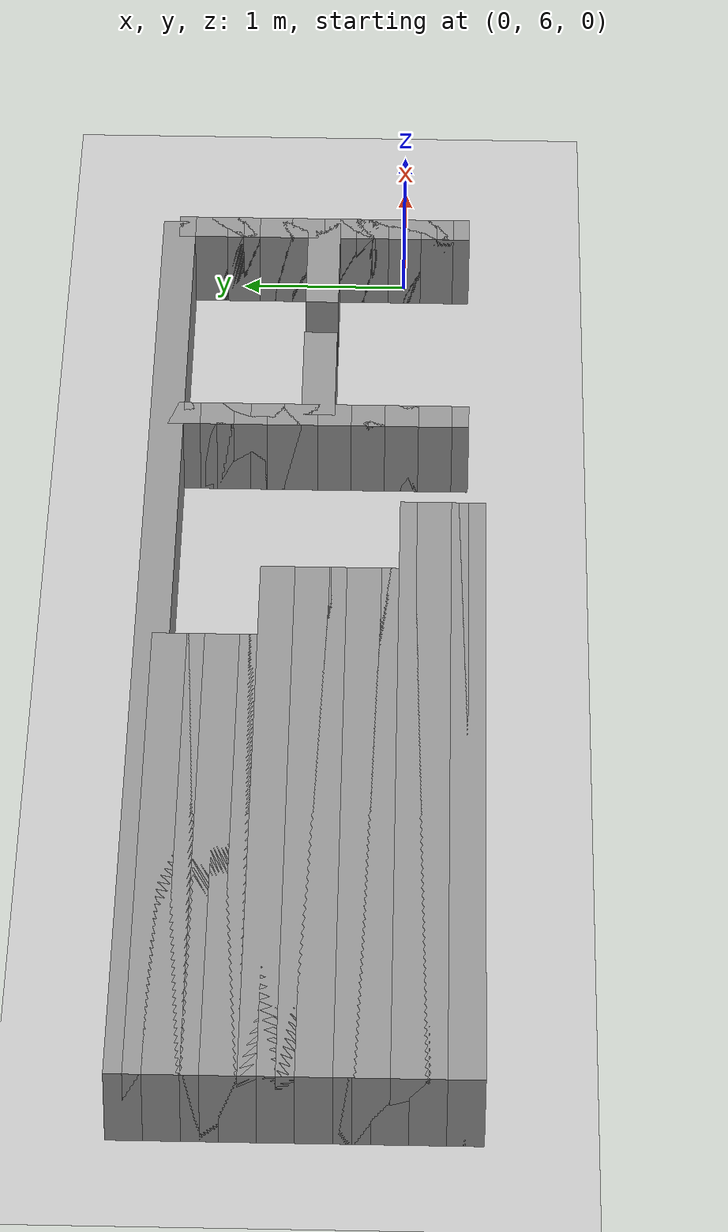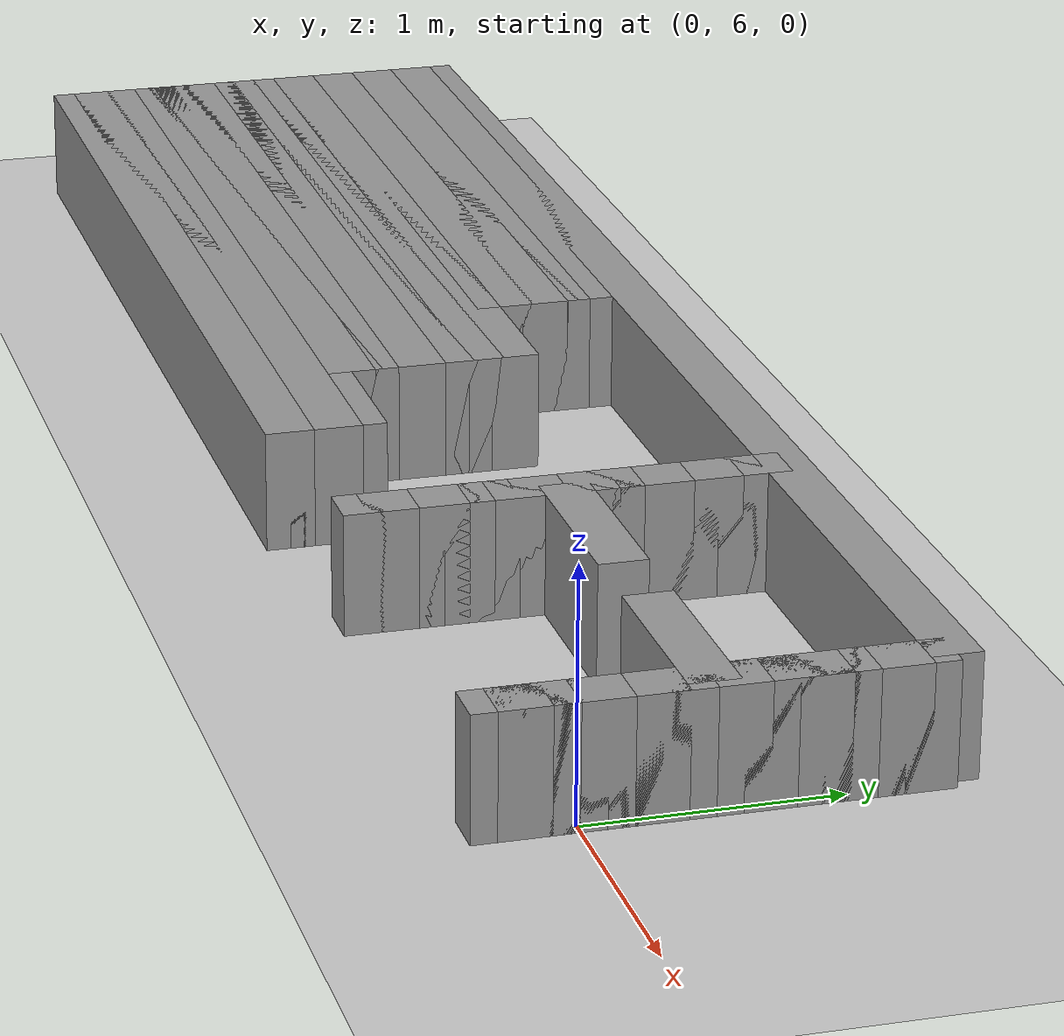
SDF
<sdf version="1.6">
 <world name="GridMap">
  <include><uri>model://sun</uri></include>
  <include><uri>model://ground_plane</uri></include>
  <model name="GridMap">
   <link name="Wall_(50.5,56.0)">
    <collision name="Wall_(50.5,56.0)_Collision">
     <geometry><box><size>4.7 0.2 0.5</size></box></geometry>
     <pose>-5.050000000000001 5.6000000000000005 0.25 0 -0 0</pose>
    </collision>
    <inertial>
     <mass>0.5</mass>
     <pose>0 0.01 0 0 0 0</pose>
     <inertia><ixx>0.004</ixx><ixy>0.001</ixy><ixz>0</ixz><iyy>0.006</iyy><iyz>0</iyz><izz>0.007</izz></inertia>
    </inertial>
    <visual name="Wall_(50.5,56.0)_Visual">
     <geometry><box><size>4.7 0.2 0.5</size></box></geometry>
     <pose>-5.050000000000001 5.6000000000000005 0.25 0 -0 0</pose>
     <material>
      <script><uri>file://media/materials/scripts/gazebo.material</uri><name>Gazebo/Grey</name></script>
      <ambient>1 1 1 1</ambient>
     </material>
     <meta><layer>0</layer></meta>
    </visual>
   </link>
   <link name="Wall_(0.5,57.0)">
    <collision name="Wall_(0.5,57.0)_Collision">
     <geometry><box><size>0.2 0.2 0.5</size></box></geometry>
     <pose>-0.05 5.7 0.25 0 -0 0</pose>
    </collision>
    <inertial>
     <mass>0.5</mass>
     <pose>0 0.01 0 0 0 0</pose>
     <inertia><ixx>0.004</ixx><ixy>0.001</ixy><ixz>0</ixz><iyy>0.006</iyy><iyz>0</iyz><izz>0.007</izz></inertia>
    </inertial>
    <visual name="Wall_(0.5,57.0)_Visual">
     <geometry><box><size>0.2 0.2 0.5</size></box></geometry>
     <pose>-0.05 5.7 0.25 0 -0 0</pose>
     <material>
      <script><uri>file://media/materials/scripts/gazebo.material</uri><name>Gazebo/Grey</name></script>
      <ambient>1 1 1 1</ambient>
     </material>
     <meta><layer>0</layer></meta>
    </visual>
   </link>
   <link name="Wall_(19.0,57.0)">
    <collision name="Wall_(19.0,57.0)_Collision">
     <geometry><box><size>0.2 0.2 0.5</size></box></geometry>
     <pose>-1.9000000000000001 5.7 0.25 0 -0 0</pose>
    </collision>
    <inertial>
     <mass>0.5</mass>
     <pose>0 0.01 0 0 0 0</pose>
     <inertia><ixx>0.004</ixx><ixy>0.001</ixy><ixz>0</ixz><iyy>0.006</iyy><iyz>0</iyz><izz>0.007</izz></inertia>
    </inertial>
    <visual name="Wall_(19.0,57.0)_Visual">
     <geometry><box><size>0.2 0.2 0.5</size></box></geometry>
     <pose>-1.9000000000000001 5.7 0.25 0 -0 0</pose>
     <material>
      <script><uri>file://media/materials/scripts/gazebo.material</uri><name>Gazebo/Grey</name></script>
      <ambient>1 1 1 1</ambient>
     </material>
     <meta><layer>0</layer></meta>
    </visual>
   </link>
   <link name="Wall_(50.5,57.0)">
    <collision name="Wall_(50.5,57.0)_Collision">
     <geometry><box><size>4.7 0.2 0.5</size></box></geometry>
     <pose>-5.050000000000001 5.7 0.25 0 -0 0</pose>
    </collision>
    <inertial>
     <mass>0.5</mass>
     <pose>0 0.01 0 0 0 0</pose>
     <inertia><ixx>0.004</ixx><ixy>0.001</ixy><ixz>0</ixz><iyy>0.006</iyy><iyz>0</iyz><izz>0.007</izz></inertia>
    </inertial>
    <visual name="Wall_(50.5,57.0)_Visual">
     <geometry><box><size>4.7 0.2 0.5</size></box></geometry>
     <pose>-5.050000000000001 5.7 0.25 0 -0 0</pose>
     <material>
      <script><uri>file://media/materials/scripts/gazebo.material</uri><name>Gazebo/Grey</name></script>
      <ambient>1 1 1 1</ambient>
     </material>
     <meta><layer>0</layer></meta>
    </visual>
   </link>
   <link name="Wall_(0.5,58.0)">
    <collision name="Wall_(0.5,58.0)_Collision">
     <geometry><box><size>0.2 0.2 0.5</size></box></geometry>
     <pose>-0.05 5.800000000000001 0.25 0 -0 0</pose>
    </collision>
    <inertial>
     <mass>0.5</mass>
     <pose>0 0.01 0 0 0 0</pose>
     <inertia><ixx>0.004</ixx><ixy>0.001</ixy><ixz>0</ixz><iyy>0.006</iyy><iyz>0</iyz><izz>0.007</izz></inertia>
    </inertial>
    <visual name="Wall_(0.5,58.0)_Visual">
     <geometry><box><size>0.2 0.2 0.5</size></box></geometry>
     <pose>-0.05 5.800000000000001 0.25 0 -0 0</pose>
     <material>
      <script><uri>file://media/materials/scripts/gazebo.material</uri><name>Gazebo/Grey</name></script>
      <ambient>1 1 1 1</ambient>
     </material>
     <meta><layer>0</layer></meta>
    </visual>
   </link>
   <link name="Wall_(19.0,58.0)">
    <collision name="Wall_(19.0,58.0)_Collision">
     <geometry><box><size>0.2 0.2 0.5</size></box></geometry>
     <pose>-1.9000000000000001 5.800000000000001 0.25 0 -0 0</pose>
    </collision>
    <inertial>
     <mass>0.5</mass>
     <pose>0 0.01 0 0 0 0</pose>
     <inertia><ixx>0.004</ixx><ixy>0.001</ixy><ixz>0</ixz><iyy>0.006</iyy><iyz>0</iyz><izz>0.007</izz></inertia>
    </inertial>
    <visual name="Wall_(19.0,58.0)_Visual">
     <geometry><box><size>0.2 0.2 0.5</size></box></geometry>
     <pose>-1.9000000000000001 5.800000000000001 0.25 0 -0 0</pose>
     <material>
      <script><uri>file://media/materials/scripts/gazebo.material</uri><name>Gazebo/Grey</name></script>
      <ambient>1 1 1 1</ambient>
     </material>
     <meta><layer>0</layer></meta>
    </visual>
   </link>
   <link name="Wall_(50.5,58.0)">
    <collision name="Wall_(50.5,58.0)_Collision">
     <geometry><box><size>4.7 0.2 0.5</size></box></geometry>
     <pose>-5.050000000000001 5.800000000000001 0.25 0 -0 0</pose>
    </collision>
    <inertial>
     <mass>0.5</mass>
     <pose>0 0.01 0 0 0 0</pose>
     <inertia><ixx>0.004</ixx><ixy>0.001</ixy><ixz>0</ixz><iyy>0.006</iyy><iyz>0</iyz><izz>0.007</izz></inertia>
    </inertial>
    <visual name="Wall_(50.5,58.0)_Visual">
     <geometry><box><size>4.7 0.2 0.5</size></box></geometry>
     <pose>-5.050000000000001 5.800000000000001 0.25 0 -0 0</pose>
     <material>
      <script><uri>file://media/materials/scripts/gazebo.material</uri><name>Gazebo/Grey</name></script>
      <ambient>1 1 1 1</ambient>
     </material>
     <meta><layer>0</layer></meta>
    </visual>
   </link>
   <link name="Wall_(0.5,59.0)">
    <collision name="Wall_(0.5,59.0)_Collision">
     <geometry><box><size>0.2 0.2 0.5</size></box></geometry>
     <pose>-0.05 5.9 0.25 0 -0 0</pose>
    </collision>
    <inertial>
     <mass>0.5</mass>
     <pose>0 0.01 0 0 0 0</pose>
     <inertia><ixx>0.004</ixx><ixy>0.001</ixy><ixz>0</ixz><iyy>0.006</iyy><iyz>0</iyz><izz>0.007</izz></inertia>
    </inertial>
    <visual name="Wall_(0.5,59.0)_Visual">
     <geometry><box><size>0.2 0.2 0.5</size></box></geometry>
     <pose>-0.05 5.9 0.25 0 -0 0</pose>
     <material>
      <script><uri>file://media/materials/scripts/gazebo.material</uri><name>Gazebo/Grey</name></script>
      <ambient>1 1 1 1</ambient>
     </material>
     <meta><layer>0</layer></meta>
    </visual>
   </link>
   <link name="Wall_(19.0,59.0)">
    <collision name="Wall_(19.0,59.0)_Collision">
     <geometry><box><size>0.2 0.2 0.5</size></box></geometry>
     <pose>-1.9000000000000001 5.9 0.25 0 -0 0</pose>
    </collision>
    <inertial>
     <mass>0.5</mass>
     <pose>0 0.01 0 0 0 0</pose>
     <inertia><ixx>0.004</ixx><ixy>0.001</ixy><ixz>0</ixz><iyy>0.006</iyy><iyz>0</iyz><izz>0.007</izz></inertia>
    </inertial>
    <visual name="Wall_(19.0,59.0)_Visual">
     <geometry><box><size>0.2 0.2 0.5</size></box></geometry>
     <pose>-1.9000000000000001 5.9 0.25 0 -0 0</pose>
     <material>
      <script><uri>file://media/materials/scripts/gazebo.material</uri><name>Gazebo/Grey</name></script>
      <ambient>1 1 1 1</ambient>
     </material>
     <meta><layer>0</layer></meta>
    </visual>
   </link>
   <link name="Wall_(50.5,59.0)">
    <collision name="Wall_(50.5,59.0)_Collision">
     <geometry><box><size>4.7 0.2 0.5</size></box></geometry>
     <pose>-5.050000000000001 5.9 0.25 0 -0 0</pose>
    </collision>
    <inertial>
     <mass>0.5</mass>
     <pose>0 0.01 0 0 0 0</pose>
     <inertia><ixx>0.004</ixx><ixy>0.001</ixy><ixz>0</ixz><iyy>0.006</iyy><iyz>0</iyz><izz>0.007</izz></inertia>
    </inertial>
    <visual name="Wall_(50.5,59.0)_Visual">
     <geometry><box><size>4.7 0.2 0.5</size></box></geometry>
     <pose>-5.050000000000001 5.9 0.25 0 -0 0</pose>
     <material>
      <script><uri>file://media/materials/scripts/gazebo.material</uri><name>Gazebo/Grey</name></script>
      <ambient>1 1 1 1</ambient>
     </material>
     <meta><layer>0</layer></meta>
    </visual>
   </link>
   <link name="Wall_(0.5,60.0)">
    <collision name="Wall_(0.5,60.0)_Collision">
     <geometry><box><size>0.2 0.2 0.5</size></box></geometry>
     <pose>-0.05 6.0 0.25 0 -0 0</pose>
    </collision>
    <inertial>
     <mass>0.5</mass>
     <pose>0 0.01 0 0 0 0</pose>
     <inertia><ixx>0.004</ixx><ixy>0.001</ixy><ixz>0</ixz><iyy>0.006</iyy><iyz>0</iyz><izz>0.007</izz></inertia>
    </inertial>
    <visual name="Wall_(0.5,60.0)_Visual">
     <geometry><box><size>0.2 0.2 0.5</size></box></geometry>
     <pose>-0.05 6.0 0.25 0 -0 0</pose>
     <material>
      <script><uri>file://media/materials/scripts/gazebo.material</uri><name>Gazebo/Grey</name></script>
      <ambient>1 1 1 1</ambient>
     </material>
     <meta><layer>0</layer></meta>
    </visual>
   </link>
   <link name="Wall_(19.0,60.0)">
    <collision name="Wall_(19.0,60.0)_Collision">
     <geometry><box><size>0.2 0.2 0.5</size></box></geometry>
     <pose>-1.9000000000000001 6.0 0.25 0 -0 0</pose>
    </collision>
    <inertial>
     <mass>0.5</mass>
     <pose>0 0.01 0 0 0 0</pose>
     <inertia><ixx>0.004</ixx><ixy>0.001</ixy><ixz>0</ixz><iyy>0.006</iyy><iyz>0</iyz><izz>0.007</izz></inertia>
    </inertial>
    <visual name="Wall_(19.0,60.0)_Visual">
     <geometry><box><size>0.2 0.2 0.5</size></box></geometry>
     <pose>-1.9000000000000001 6.0 0.25 0 -0 0</pose>
     <material>
      <script><uri>file://media/materials/scripts/gazebo.material</uri><name>Gazebo/Grey</name></script>
      <ambient>1 1 1 1</ambient>
     </material>
     <meta><layer>0</layer></meta>
    </visual>
   </link>
   <link name="Wall_(53.5,60.0)">
    <collision name="Wall_(53.5,60.0)_Collision">
     <geometry><box><size>4.1000000000000005 0.2 0.5</size></box></geometry>
     <pose>-5.3500000000000005 6.0 0.25 0 -0 0</pose>
    </collision>
    <inertial>
     <mass>0.5</mass>
     <pose>0 0.01 0 0 0 0</pose>
     <inertia><ixx>0.004</ixx><ixy>0.001</ixy><ixz>0</ixz><iyy>0.006</iyy><iyz>0</iyz><izz>0.007</izz></inertia>
    </inertial>
    <visual name="Wall_(53.5,60.0)_Visual">
     <geometry><box><size>4.1000000000000005 0.2 0.5</size></box></geometry>
     <pose>-5.3500000000000005 6.0 0.25 0 -0 0</pose>
     <material>
      <script><uri>file://media/materials/scripts/gazebo.material</uri><name>Gazebo/Grey</name></script>
      <ambient>1 1 1 1</ambient>
     </material>
     <meta><layer>0</layer></meta>
    </visual>
   </link>
   <link name="Wall_(0.5,61.0)">
    <collision name="Wall_(0.5,61.0)_Collision">
     <geometry><box><size>0.2 0.2 0.5</size></box></geometry>
     <pose>-0.05 6.1000000000000005 0.25 0 -0 0</pose>
    </collision>
    <inertial>
     <mass>0.5</mass>
     <pose>0 0.01 0 0 0 0</pose>
     <inertia><ixx>0.004</ixx><ixy>0.001</ixy><ixz>0</ixz><iyy>0.006</iyy><iyz>0</iyz><izz>0.007</izz></inertia>
    </inertial>
    <visual name="Wall_(0.5,61.0)_Visual">
     <geometry><box><size>0.2 0.2 0.5</size></box></geometry>
     <pose>-0.05 6.1000000000000005 0.25 0 -0 0</pose>
     <material>
      <script><uri>file://media/materials/scripts/gazebo.material</uri><name>Gazebo/Grey</name></script>
      <ambient>1 1 1 1</ambient>
     </material>
     <meta><layer>0</layer></meta>
    </visual>
   </link>
   <link name="Wall_(19.0,61.0)">
    <collision name="Wall_(19.0,61.0)_Collision">
     <geometry><box><size>0.2 0.2 0.5</size></box></geometry>
     <pose>-1.9000000000000001 6.1000000000000005 0.25 0 -0 0</pose>
    </collision>
    <inertial>
     <mass>0.5</mass>
     <pose>0 0.01 0 0 0 0</pose>
     <inertia><ixx>0.004</ixx><ixy>0.001</ixy><ixz>0</ixz><iyy>0.006</iyy><iyz>0</iyz><izz>0.007</izz></inertia>
    </inertial>
    <visual name="Wall_(19.0,61.0)_Visual">
     <geometry><box><size>0.2 0.2 0.5</size></box></geometry>
     <pose>-1.9000000000000001 6.1000000000000005 0.25 0 -0 0</pose>
     <material>
      <script><uri>file://media/materials/scripts/gazebo.material</uri><name>Gazebo/Grey</name></script>
      <ambient>1 1 1 1</ambient>
     </material>
     <meta><layer>0</layer></meta>
    </visual>
   </link>
   <link name="Wall_(53.5,61.0)">
    <collision name="Wall_(53.5,61.0)_Collision">
     <geometry><box><size>4.1000000000000005 0.2 0.5</size></box></geometry>
     <pose>-5.3500000000000005 6.1000000000000005 0.25 0 -0 0</pose>
    </collision>
    <inertial>
     <mass>0.5</mass>
     <pose>0 0.01 0 0 0 0</pose>
     <inertia><ixx>0.004</ixx><ixy>0.001</ixy><ixz>0</ixz><iyy>0.006</iyy><iyz>0</iyz><izz>0.007</izz></inertia>
    </inertial>
    <visual name="Wall_(53.5,61.0)_Visual">
     <geometry><box><size>4.1000000000000005 0.2 0.5</size></box></geometry>
     <pose>-5.3500000000000005 6.1000000000000005 0.25 0 -0 0</pose>
     <material>
      <script><uri>file://media/materials/scripts/gazebo.material</uri><name>Gazebo/Grey</name></script>
      <ambient>1 1 1 1</ambient>
     </material>
     <meta><layer>0</layer></meta>
    </visual>
   </link>
   <link name="Wall_(0.5,62.0)">
    <collision name="Wall_(0.5,62.0)_Collision">
     <geometry><box><size>0.2 0.2 0.5</size></box></geometry>
     <pose>-0.05 6.2 0.25 0 -0 0</pose>
    </collision>
    <inertial>
     <mass>0.5</mass>
     <pose>0 0.01 0 0 0 0</pose>
     <inertia><ixx>0.004</ixx><ixy>0.001</ixy><ixz>0</ixz><iyy>0.006</iyy><iyz>0</iyz><izz>0.007</izz></inertia>
    </inertial>
    <visual name="Wall_(0.5,62.0)_Visual">
     <geometry><box><size>0.2 0.2 0.5</size></box></geometry>
     <pose>-0.05 6.2 0.25 0 -0 0</pose>
     <material>
      <script><uri>file://media/materials/scripts/gazebo.material</uri><name>Gazebo/Grey</name></script>
      <ambient>1 1 1 1</ambient>
     </material>
     <meta><layer>0</layer></meta>
    </visual>
   </link>
   <link name="Wall_(19.0,62.0)">
    <collision name="Wall_(19.0,62.0)_Collision">
     <geometry><box><size>0.2 0.2 0.5</size></box></geometry>
     <pose>-1.9000000000000001 6.2 0.25 0 -0 0</pose>
    </collision>
    <inertial>
     <mass>0.5</mass>
     <pose>0 0.01 0 0 0 0</pose>
     <inertia><ixx>0.004</ixx><ixy>0.001</ixy><ixz>0</ixz><iyy>0.006</iyy><iyz>0</iyz><izz>0.007</izz></inertia>
    </inertial>
    <visual name="Wall_(19.0,62.0)_Visual">
     <geometry><box><size>0.2 0.2 0.5</size></box></geometry>
     <pose>-1.9000000000000001 6.2 0.25 0 -0 0</pose>
     <material>
      <script><uri>file://media/materials/scripts/gazebo.material</uri><name>Gazebo/Grey</name></script>
      <ambient>1 1 1 1</ambient>
     </material>
     <meta><layer>0</layer></meta>
    </visual>
   </link>
   <link name="Wall_(53.5,62.0)">
    <collision name="Wall_(53.5,62.0)_Collision">
     <geometry><box><size>4.1000000000000005 0.2 0.5</size></box></geometry>
     <pose>-5.3500000000000005 6.2 0.25 0 -0 0</pose>
    </collision>
    <inertial>
     <mass>0.5</mass>
     <pose>0 0.01 0 0 0 0</pose>
     <inertia><ixx>0.004</ixx><ixy>0.001</ixy><ixz>0</ixz><iyy>0.006</iyy><iyz>0</iyz><izz>0.007</izz></inertia>
    </inertial>
    <visual name="Wall_(53.5,62.0)_Visual">
     <geometry><box><size>4.1000000000000005 0.2 0.5</size></box></geometry>
     <pose>-5.3500000000000005 6.2 0.25 0 -0 0</pose>
     <material>
      <script><uri>file://media/materials/scripts/gazebo.material</uri><name>Gazebo/Grey</name></script>
      <ambient>1 1 1 1</ambient>
     </material>
     <meta><layer>0</layer></meta>
    </visual>
   </link>
   <link name="Wall_(0.5,63.0)">
    <collision name="Wall_(0.5,63.0)_Collision">
     <geometry><box><size>0.2 0.2 0.5</size></box></geometry>
     <pose>-0.05 6.300000000000001 0.25 0 -0 0</pose>
    </collision>
    <inertial>
     <mass>0.5</mass>
     <pose>0 0.01 0 0 0 0</pose>
     <inertia><ixx>0.004</ixx><ixy>0.001</ixy><ixz>0</ixz><iyy>0.006</iyy><iyz>0</iyz><izz>0.007</izz></inertia>
    </inertial>
    <visual name="Wall_(0.5,63.0)_Visual">
     <geometry><box><size>0.2 0.2 0.5</size></box></geometry>
     <pose>-0.05 6.300000000000001 0.25 0 -0 0</pose>
     <material>
      <script><uri>file://media/materials/scripts/gazebo.material</uri><name>Gazebo/Grey</name></script>
      <ambient>1 1 1 1</ambient>
     </material>
     <meta><layer>0</layer></meta>
    </visual>
   </link>
   <link name="Wall_(19.0,63.0)">
    <collision name="Wall_(19.0,63.0)_Collision">
     <geometry><box><size>0.2 0.2 0.5</size></box></geometry>
     <pose>-1.9000000000000001 6.300000000000001 0.25 0 -0 0</pose>
    </collision>
    <inertial>
     <mass>0.5</mass>
     <pose>0 0.01 0 0 0 0</pose>
     <inertia><ixx>0.004</ixx><ixy>0.001</ixy><ixz>0</ixz><iyy>0.006</iyy><iyz>0</iyz><izz>0.007</izz></inertia>
    </inertial>
    <visual name="Wall_(19.0,63.0)_Visual">
     <geometry><box><size>0.2 0.2 0.5</size></box></geometry>
     <pose>-1.9000000000000001 6.300000000000001 0.25 0 -0 0</pose>
     <material>
      <script><uri>file://media/materials/scripts/gazebo.material</uri><name>Gazebo/Grey</name></script>
      <ambient>1 1 1 1</ambient>
     </material>
     <meta><layer>0</layer></meta>
    </visual>
   </link>
   <link name="Wall_(53.5,63.0)">
    <collision name="Wall_(53.5,63.0)_Collision">
     <geometry><box><size>4.1000000000000005 0.2 0.5</size></box></geometry>
     <pose>-5.3500000000000005 6.300000000000001 0.25 0 -0 0</pose>
    </collision>
    <inertial>
     <mass>0.5</mass>
     <pose>0 0.01 0 0 0 0</pose>
     <inertia><ixx>0.004</ixx><ixy>0.001</ixy><ixz>0</ixz><iyy>0.006</iyy><iyz>0</iyz><izz>0.007</izz></inertia>
    </inertial>
    <visual name="Wall_(53.5,63.0)_Visual">
     <geometry><box><size>4.1000000000000005 0.2 0.5</size></box></geometry>
     <pose>-5.3500000000000005 6.300000000000001 0.25 0 -0 0</pose>
     <material>
      <script><uri>file://media/materials/scripts/gazebo.material</uri><name>Gazebo/Grey</name></script>
      <ambient>1 1 1 1</ambient>
     </material>
     <meta><layer>0</layer></meta>
    </visual>
   </link>
   <link name="Wall_(0.5,64.0)">
    <collision name="Wall_(0.5,64.0)_Collision">
     <geometry><box><size>0.2 0.2 0.5</size></box></geometry>
     <pose>-0.05 6.4 0.25 0 -0 0</pose>
    </collision>
    <inertial>
     <mass>0.5</mass>
     <pose>0 0.01 0 0 0 0</pose>
     <inertia><ixx>0.004</ixx><ixy>0.001</ixy><ixz>0</ixz><iyy>0.006</iyy><iyz>0</iyz><izz>0.007</izz></inertia>
    </inertial>
    <visual name="Wall_(0.5,64.0)_Visual">
     <geometry><box><size>0.2 0.2 0.5</size></box></geometry>
     <pose>-0.05 6.4 0.25 0 -0 0</pose>
     <material>
      <script><uri>file://media/materials/scripts/gazebo.material</uri><name>Gazebo/Grey</name></script>
      <ambient>1 1 1 1</ambient>
     </material>
     <meta><layer>0</layer></meta>
    </visual>
   </link>
   <link name="Wall_(19.0,64.0)">
    <collision name="Wall_(19.0,64.0)_Collision">
     <geometry><box><size>0.2 0.2 0.5</size></box></geometry>
     <pose>-1.9000000000000001 6.4 0.25 0 -0 0</pose>
    </collision>
    <inertial>
     <mass>0.5</mass>
     <pose>0 0.01 0 0 0 0</pose>
     <inertia><ixx>0.004</ixx><ixy>0.001</ixy><ixz>0</ixz><iyy>0.006</iyy><iyz>0</iyz><izz>0.007</izz></inertia>
    </inertial>
    <visual name="Wall_(19.0,64.0)_Visual">
     <geometry><box><size>0.2 0.2 0.5</size></box></geometry>
     <pose>-1.9000000000000001 6.4 0.25 0 -0 0</pose>
     <material>
      <script><uri>file://media/materials/scripts/gazebo.material</uri><name>Gazebo/Grey</name></script>
      <ambient>1 1 1 1</ambient>
     </material>
     <meta><layer>0</layer></meta>
    </visual>
   </link>
   <link name="Wall_(53.5,64.0)">
    <collision name="Wall_(53.5,64.0)_Collision">
     <geometry><box><size>4.1000000000000005 0.2 0.5</size></box></geometry>
     <pose>-5.3500000000000005 6.4 0.25 0 -0 0</pose>
    </collision>
    <inertial>
     <mass>0.5</mass>
     <pose>0 0.01 0 0 0 0</pose>
     <inertia><ixx>0.004</ixx><ixy>0.001</ixy><ixz>0</ixz><iyy>0.006</iyy><iyz>0</iyz><izz>0.007</izz></inertia>
    </inertial>
    <visual name="Wall_(53.5,64.0)_Visual">
     <geometry><box><size>4.1000000000000005 0.2 0.5</size></box></geometry>
     <pose>-5.3500000000000005 6.4 0.25 0 -0 0</pose>
     <material>
      <script><uri>file://media/materials/scripts/gazebo.material</uri><name>Gazebo/Grey</name></script>
      <ambient>1 1 1 1</ambient>
     </material>
     <meta><layer>0</layer></meta>
    </visual>
   </link>
   <link name="Wall_(4.0,65.0)">
    <collision name="Wall_(4.0,65.0)_Collision">
     <geometry><box><size>0.8 0.2 0.5</size></box></geometry>
     <pose>-0.4 6.5 0.25 0 -0 0</pose>
    </collision>
    <inertial>
     <mass>0.5</mass>
     <pose>0 0.01 0 0 0 0</pose>
     <inertia><ixx>0.004</ixx><ixy>0.001</ixy><ixz>0</ixz><iyy>0.006</iyy><iyz>0</iyz><izz>0.007</izz></inertia>
    </inertial>
    <visual name="Wall_(4.0,65.0)_Visual">
     <geometry><box><size>0.8 0.2 0.5</size></box></geometry>
     <pose>-0.4 6.5 0.25 0 -0 0</pose>
     <material>
      <script><uri>file://media/materials/scripts/gazebo.material</uri><name>Gazebo/Grey</name></script>
      <ambient>1 1 1 1</ambient>
     </material>
     <meta><layer>0</layer></meta>
    </visual>
   </link>
   <link name="Wall_(15.0,65.0)">
    <collision name="Wall_(15.0,65.0)_Collision">
     <geometry><box><size>0.8 0.2 0.5</size></box></geometry>
     <pose>-1.5 6.5 0.25 0 -0 0</pose>
    </collision>
    <inertial>
     <mass>0.5</mass>
     <pose>0 0.01 0 0 0 0</pose>
     <inertia><ixx>0.004</ixx><ixy>0.001</ixy><ixz>0</ixz><iyy>0.006</iyy><iyz>0</iyz><izz>0.007</izz></inertia>
    </inertial>
    <visual name="Wall_(15.0,65.0)_Visual">
     <geometry><box><size>0.8 0.2 0.5</size></box></geometry>
     <pose>-1.5 6.5 0.25 0 -0 0</pose>
     <material>
      <script><uri>file://media/materials/scripts/gazebo.material</uri><name>Gazebo/Grey</name></script>
      <ambient>1 1 1 1</ambient>
     </material>
     <meta><layer>0</layer></meta>
    </visual>
   </link>
   <link name="Wall_(53.5,65.0)">
    <collision name="Wall_(53.5,65.0)_Collision">
     <geometry><box><size>4.1000000000000005 0.2 0.5</size></box></geometry>
     <pose>-5.3500000000000005 6.5 0.25 0 -0 0</pose>
    </collision>
    <inertial>
     <mass>0.5</mass>
     <pose>0 0.01 0 0 0 0</pose>
     <inertia><ixx>0.004</ixx><ixy>0.001</ixy><ixz>0</ixz><iyy>0.006</iyy><iyz>0</iyz><izz>0.007</izz></inertia>
    </inertial>
    <visual name="Wall_(53.5,65.0)_Visual">
     <geometry><box><size>4.1000000000000005 0.2 0.5</size></box></geometry>
     <pose>-5.3500000000000005 6.5 0.25 0 -0 0</pose>
     <material>
      <script><uri>file://media/materials/scripts/gazebo.material</uri><name>Gazebo/Grey</name></script>
      <ambient>1 1 1 1</ambient>
     </material>
     <meta><layer>0</layer></meta>
    </visual>
   </link>
   <link name="Wall_(0.5,66.0)">
    <collision name="Wall_(0.5,66.0)_Collision">
     <geometry><box><size>0.2 0.2 0.5</size></box></geometry>
     <pose>-0.05 6.6000000000000005 0.25 0 -0 0</pose>
    </collision>
    <inertial>
     <mass>0.5</mass>
     <pose>0 0.01 0 0 0 0</pose>
     <inertia><ixx>0.004</ixx><ixy>0.001</ixy><ixz>0</ixz><iyy>0.006</iyy><iyz>0</iyz><izz>0.007</izz></inertia>
    </inertial>
    <visual name="Wall_(0.5,66.0)_Visual">
     <geometry><box><size>0.2 0.2 0.5</size></box></geometry>
     <pose>-0.05 6.6000000000000005 0.25 0 -0 0</pose>
     <material>
      <script><uri>file://media/materials/scripts/gazebo.material</uri><name>Gazebo/Grey</name></script>
      <ambient>1 1 1 1</ambient>
     </material>
     <meta><layer>0</layer></meta>
    </visual>
   </link>
   <link name="Wall_(19.0,66.0)">
    <collision name="Wall_(19.0,66.0)_Collision">
     <geometry><box><size>0.2 0.2 0.5</size></box></geometry>
     <pose>-1.9000000000000001 6.6000000000000005 0.25 0 -0 0</pose>
    </collision>
    <inertial>
     <mass>0.5</mass>
     <pose>0 0.01 0 0 0 0</pose>
     <inertia><ixx>0.004</ixx><ixy>0.001</ixy><ixz>0</ixz><iyy>0.006</iyy><iyz>0</iyz><izz>0.007</izz></inertia>
    </inertial>
    <visual name="Wall_(19.0,66.0)_Visual">
     <geometry><box><size>0.2 0.2 0.5</size></box></geometry>
     <pose>-1.9000000000000001 6.6000000000000005 0.25 0 -0 0</pose>
     <material>
      <script><uri>file://media/materials/scripts/gazebo.material</uri><name>Gazebo/Grey</name></script>
      <ambient>1 1 1 1</ambient>
     </material>
     <meta><layer>0</layer></meta>
    </visual>
   </link>
   <link name="Wall_(53.5,66.0)">
    <collision name="Wall_(53.5,66.0)_Collision">
     <geometry><box><size>4.1000000000000005 0.2 0.5</size></box></geometry>
     <pose>-5.3500000000000005 6.6000000000000005 0.25 0 -0 0</pose>
    </collision>
    <inertial>
     <mass>0.5</mass>
     <pose>0 0.01 0 0 0 0</pose>
     <inertia><ixx>0.004</ixx><ixy>0.001</ixy><ixz>0</ixz><iyy>0.006</iyy><iyz>0</iyz><izz>0.007</izz></inertia>
    </inertial>
    <visual name="Wall_(53.5,66.0)_Visual">
     <geometry><box><size>4.1000000000000005 0.2 0.5</size></box></geometry>
     <pose>-5.3500000000000005 6.6000000000000005 0.25 0 -0 0</pose>
     <material>
      <script><uri>file://media/materials/scripts/gazebo.material</uri><name>Gazebo/Grey</name></script>
      <ambient>1 1 1 1</ambient>
     </material>
     <meta><layer>0</layer></meta>
    </visual>
   </link>
   <link name="Wall_(0.5,67.0)">
    <collision name="Wall_(0.5,67.0)_Collision">
     <geometry><box><size>0.2 0.2 0.5</size></box></geometry>
     <pose>-0.05 6.7 0.25 0 -0 0</pose>
    </collision>
    <inertial>
     <mass>0.5</mass>
     <pose>0 0.01 0 0 0 0</pose>
     <inertia><ixx>0.004</ixx><ixy>0.001</ixy><ixz>0</ixz><iyy>0.006</iyy><iyz>0</iyz><izz>0.007</izz></inertia>
    </inertial>
    <visual name="Wall_(0.5,67.0)_Visual">
     <geometry><box><size>0.2 0.2 0.5</size></box></geometry>
     <pose>-0.05 6.7 0.25 0 -0 0</pose>
     <material>
      <script><uri>file://media/materials/scripts/gazebo.material</uri><name>Gazebo/Grey</name></script>
      <ambient>1 1 1 1</ambient>
     </material>
     <meta><layer>0</layer></meta>
    </visual>
   </link>
   <link name="Wall_(19.0,67.0)">
    <collision name="Wall_(19.0,67.0)_Collision">
     <geometry><box><size>0.2 0.2 0.5</size></box></geometry>
     <pose>-1.9000000000000001 6.7 0.25 0 -0 0</pose>
    </collision>
    <inertial>
     <mass>0.5</mass>
     <pose>0 0.01 0 0 0 0</pose>
     <inertia><ixx>0.004</ixx><ixy>0.001</ixy><ixz>0</ixz><iyy>0.006</iyy><iyz>0</iyz><izz>0.007</izz></inertia>
    </inertial>
    <visual name="Wall_(19.0,67.0)_Visual">
     <geometry><box><size>0.2 0.2 0.5</size></box></geometry>
     <pose>-1.9000000000000001 6.7 0.25 0 -0 0</pose>
     <material>
      <script><uri>file://media/materials/scripts/gazebo.material</uri><name>Gazebo/Grey</name></script>
      <ambient>1 1 1 1</ambient>
     </material>
     <meta><layer>0</layer></meta>
    </visual>
   </link>
   <link name="Wall_(53.5,67.0)">
    <collision name="Wall_(53.5,67.0)_Collision">
     <geometry><box><size>4.1000000000000005 0.2 0.5</size></box></geometry>
     <pose>-5.3500000000000005 6.7 0.25 0 -0 0</pose>
    </collision>
    <inertial>
     <mass>0.5</mass>
     <pose>0 0.01 0 0 0 0</pose>
     <inertia><ixx>0.004</ixx><ixy>0.001</ixy><ixz>0</ixz><iyy>0.006</iyy><iyz>0</iyz><izz>0.007</izz></inertia>
    </inertial>
    <visual name="Wall_(53.5,67.0)_Visual">
     <geometry><box><size>4.1000000000000005 0.2 0.5</size></box></geometry>
     <pose>-5.3500000000000005 6.7 0.25 0 -0 0</pose>
     <material>
      <script><uri>file://media/materials/scripts/gazebo.material</uri><name>Gazebo/Grey</name></script>
      <ambient>1 1 1 1</ambient>
     </material>
     <meta><layer>0</layer></meta>
    </visual>
   </link>
   <link name="Wall_(0.5,68.0)">
    <collision name="Wall_(0.5,68.0)_Collision">
     <geometry><box><size>0.2 0.2 0.5</size></box></geometry>
     <pose>-0.05 6.800000000000001 0.25 0 -0 0</pose>
    </collision>
    <inertial>
     <mass>0.5</mass>
     <pose>0 0.01 0 0 0 0</pose>
     <inertia><ixx>0.004</ixx><ixy>0.001</ixy><ixz>0</ixz><iyy>0.006</iyy><iyz>0</iyz><izz>0.007</izz></inertia>
    </inertial>
    <visual name="Wall_(0.5,68.0)_Visual">
     <geometry><box><size>0.2 0.2 0.5</size></box></geometry>
     <pose>-0.05 6.800000000000001 0.25 0 -0 0</pose>
     <material>
      <script><uri>file://media/materials/scripts/gazebo.material</uri><name>Gazebo/Grey</name></script>
      <ambient>1 1 1 1</ambient>
     </material>
     <meta><layer>0</layer></meta>
    </visual>
   </link>
   <link name="Wall_(19.0,68.0)">
    <collision name="Wall_(19.0,68.0)_Collision">
     <geometry><box><size>0.2 0.2 0.5</size></box></geometry>
     <pose>-1.9000000000000001 6.800000000000001 0.25 0 -0 0</pose>
    </collision>
    <inertial>
     <mass>0.5</mass>
     <pose>0 0.01 0 0 0 0</pose>
     <inertia><ixx>0.004</ixx><ixy>0.001</ixy><ixz>0</ixz><iyy>0.006</iyy><iyz>0</iyz><izz>0.007</izz></inertia>
    </inertial>
    <visual name="Wall_(19.0,68.0)_Visual">
     <geometry><box><size>0.2 0.2 0.5</size></box></geometry>
     <pose>-1.9000000000000001 6.800000000000001 0.25 0 -0 0</pose>
     <material>
      <script><uri>file://media/materials/scripts/gazebo.material</uri><name>Gazebo/Grey</name></script>
      <ambient>1 1 1 1</ambient>
     </material>
     <meta><layer>0</layer></meta>
    </visual>
   </link>
   <link name="Wall_(56.5,68.0)">
    <collision name="Wall_(56.5,68.0)_Collision">
     <geometry><box><size>3.5 0.2 0.5</size></box></geometry>
     <pose>-5.65 6.800000000000001 0.25 0 -0 0</pose>
    </collision>
    <inertial>
     <mass>0.5</mass>
     <pose>0 0.01 0 0 0 0</pose>
     <inertia><ixx>0.004</ixx><ixy>0.001</ixy><ixz>0</ixz><iyy>0.006</iyy><iyz>0</iyz><izz>0.007</izz></inertia>
    </inertial>
    <visual name="Wall_(56.5,68.0)_Visual">
     <geometry><box><size>3.5 0.2 0.5</size></box></geometry>
     <pose>-5.65 6.800000000000001 0.25 0 -0 0</pose>
     <material>
      <script><uri>file://media/materials/scripts/gazebo.material</uri><name>Gazebo/Grey</name></script>
      <ambient>1 1 1 1</ambient>
     </material>
     <meta><layer>0</layer></meta>
    </visual>
   </link>
   <link name="Wall_(0.5,69.0)">
    <collision name="Wall_(0.5,69.0)_Collision">
     <geometry><box><size>0.2 0.2 0.5</size></box></geometry>
     <pose>-0.05 6.9 0.25 0 -0 0</pose>
    </collision>
    <inertial>
     <mass>0.5</mass>
     <pose>0 0.01 0 0 0 0</pose>
     <inertia><ixx>0.004</ixx><ixy>0.001</ixy><ixz>0</ixz><iyy>0.006</iyy><iyz>0</iyz><izz>0.007</izz></inertia>
    </inertial>
    <visual name="Wall_(0.5,69.0)_Visual">
     <geometry><box><size>0.2 0.2 0.5</size></box></geometry>
     <pose>-0.05 6.9 0.25 0 -0 0</pose>
     <material>
      <script><uri>file://media/materials/scripts/gazebo.material</uri><name>Gazebo/Grey</name></script>
      <ambient>1 1 1 1</ambient>
     </material>
     <meta><layer>0</layer></meta>
    </visual>
   </link>
   <link name="Wall_(19.0,69.0)">
    <collision name="Wall_(19.0,69.0)_Collision">
     <geometry><box><size>0.2 0.2 0.5</size></box></geometry>
     <pose>-1.9000000000000001 6.9 0.25 0 -0 0</pose>
    </collision>
    <inertial>
     <mass>0.5</mass>
     <pose>0 0.01 0 0 0 0</pose>
     <inertia><ixx>0.004</ixx><ixy>0.001</ixy><ixz>0</ixz><iyy>0.006</iyy><iyz>0</iyz><izz>0.007</izz></inertia>
    </inertial>
    <visual name="Wall_(19.0,69.0)_Visual">
     <geometry><box><size>0.2 0.2 0.5</size></box></geometry>
     <pose>-1.9000000000000001 6.9 0.25 0 -0 0</pose>
     <material>
      <script><uri>file://media/materials/scripts/gazebo.material</uri><name>Gazebo/Grey</name></script>
      <ambient>1 1 1 1</ambient>
     </material>
     <meta><layer>0</layer></meta>
    </visual>
   </link>
   <link name="Wall_(56.5,69.0)">
    <collision name="Wall_(56.5,69.0)_Collision">
     <geometry><box><size>3.5 0.2 0.5</size></box></geometry>
     <pose>-5.65 6.9 0.25 0 -0 0</pose>
    </collision>
    <inertial>
     <mass>0.5</mass>
     <pose>0 0.01 0 0 0 0</pose>
     <inertia><ixx>0.004</ixx><ixy>0.001</ixy><ixz>0</ixz><iyy>0.006</iyy><iyz>0</iyz><izz>0.007</izz></inertia>
    </inertial>
    <visual name="Wall_(56.5,69.0)_Visual">
     <geometry><box><size>3.5 0.2 0.5</size></box></geometry>
     <pose>-5.65 6.9 0.25 0 -0 0</pose>
     <material>
      <script><uri>file://media/materials/scripts/gazebo.material</uri><name>Gazebo/Grey</name></script>
      <ambient>1 1 1 1</ambient>
     </material>
     <meta><layer>0</layer></meta>
    </visual>
   </link>
   <link name="Wall_(0.5,70.0)">
    <collision name="Wall_(0.5,70.0)_Collision">
     <geometry><box><size>0.2 0.2 0.5</size></box></geometry>
     <pose>-0.05 7.0 0.25 0 -0 0</pose>
    </collision>
    <inertial>
     <mass>0.5</mass>
     <pose>0 0.01 0 0 0 0</pose>
     <inertia><ixx>0.004</ixx><ixy>0.001</ixy><ixz>0</ixz><iyy>0.006</iyy><iyz>0</iyz><izz>0.007</izz></inertia>
    </inertial>
    <visual name="Wall_(0.5,70.0)_Visual">
     <geometry><box><size>0.2 0.2 0.5</size></box></geometry>
     <pose>-0.05 7.0 0.25 0 -0 0</pose>
     <material>
      <script><uri>file://media/materials/scripts/gazebo.material</uri><name>Gazebo/Grey</name></script>
      <ambient>1 1 1 1</ambient>
     </material>
     <meta><layer>0</layer></meta>
    </visual>
   </link>
   <link name="Wall_(19.0,70.0)">
    <collision name="Wall_(19.0,70.0)_Collision">
     <geometry><box><size>0.2 0.2 0.5</size></box></geometry>
     <pose>-1.9000000000000001 7.0 0.25 0 -0 0</pose>
    </collision>
    <inertial>
     <mass>0.5</mass>
     <pose>0 0.01 0 0 0 0</pose>
     <inertia><ixx>0.004</ixx><ixy>0.001</ixy><ixz>0</ixz><iyy>0.006</iyy><iyz>0</iyz><izz>0.007</izz></inertia>
    </inertial>
    <visual name="Wall_(19.0,70.0)_Visual">
     <geometry><box><size>0.2 0.2 0.5</size></box></geometry>
     <pose>-1.9000000000000001 7.0 0.25 0 -0 0</pose>
     <material>
      <script><uri>file://media/materials/scripts/gazebo.material</uri><name>Gazebo/Grey</name></script>
      <ambient>1 1 1 1</ambient>
     </material>
     <meta><layer>0</layer></meta>
    </visual>
   </link>
   <link name="Wall_(56.5,70.0)">
    <collision name="Wall_(56.5,70.0)_Collision">
     <geometry><box><size>3.5 0.2 0.5</size></box></geometry>
     <pose>-5.65 7.0 0.25 0 -0 0</pose>
    </collision>
    <inertial>
     <mass>0.5</mass>
     <pose>0 0.01 0 0 0 0</pose>
     <inertia><ixx>0.004</ixx><ixy>0.001</ixy><ixz>0</ixz><iyy>0.006</iyy><iyz>0</iyz><izz>0.007</izz></inertia>
    </inertial>
    <visual name="Wall_(56.5,70.0)_Visual">
     <geometry><box><size>3.5 0.2 0.5</size></box></geometry>
     <pose>-5.65 7.0 0.25 0 -0 0</pose>
     <material>
      <script><uri>file://media/materials/scripts/gazebo.material</uri><name>Gazebo/Grey</name></script>
      <ambient>1 1 1 1</ambient>
     </material>
     <meta><layer>0</layer></meta>
    </visual>
   </link>
   <link name="Wall_(0.5,71.0)">
    <collision name="Wall_(0.5,71.0)_Collision">
     <geometry><box><size>0.2 0.2 0.5</size></box></geometry>
     <pose>-0.05 7.1000000000000005 0.25 0 -0 0</pose>
    </collision>
    <inertial>
     <mass>0.5</mass>
     <pose>0 0.01 0 0 0 0</pose>
     <inertia><ixx>0.004</ixx><ixy>0.001</ixy><ixz>0</ixz><iyy>0.006</iyy><iyz>0</iyz><izz>0.007</izz></inertia>
    </inertial>
    <visual name="Wall_(0.5,71.0)_Visual">
     <geometry><box><size>0.2 0.2 0.5</size></box></geometry>
     <pose>-0.05 7.1000000000000005 0.25 0 -0 0</pose>
     <material>
      <script><uri>file://media/materials/scripts/gazebo.material</uri><name>Gazebo/Grey</name></script>
      <ambient>1 1 1 1</ambient>
     </material>
     <meta><layer>0</layer></meta>
    </visual>
   </link>
   <link name="Wall_(19.0,71.0)">
    <collision name="Wall_(19.0,71.0)_Collision">
     <geometry><box><size>0.2 0.2 0.5</size></box></geometry>
     <pose>-1.9000000000000001 7.1000000000000005 0.25 0 -0 0</pose>
    </collision>
    <inertial>
     <mass>0.5</mass>
     <pose>0 0.01 0 0 0 0</pose>
     <inertia><ixx>0.004</ixx><ixy>0.001</ixy><ixz>0</ixz><iyy>0.006</iyy><iyz>0</iyz><izz>0.007</izz></inertia>
    </inertial>
    <visual name="Wall_(19.0,71.0)_Visual">
     <geometry><box><size>0.2 0.2 0.5</size></box></geometry>
     <pose>-1.9000000000000001 7.1000000000000005 0.25 0 -0 0</pose>
     <material>
      <script><uri>file://media/materials/scripts/gazebo.material</uri><name>Gazebo/Grey</name></script>
      <ambient>1 1 1 1</ambient>
     </material>
     <meta><layer>0</layer></meta>
    </visual>
   </link>
   <link name="Wall_(56.5,71.0)">
    <collision name="Wall_(56.5,71.0)_Collision">
     <geometry><box><size>3.5 0.2 0.5</size></box></geometry>
     <pose>-5.65 7.1000000000000005 0.25 0 -0 0</pose>
    </collision>
    <inertial>
     <mass>0.5</mass>
     <pose>0 0.01 0 0 0 0</pose>
     <inertia><ixx>0.004</ixx><ixy>0.001</ixy><ixz>0</ixz><iyy>0.006</iyy><iyz>0</iyz><izz>0.007</izz></inertia>
    </inertial>
    <visual name="Wall_(56.5,71.0)_Visual">
     <geometry><box><size>3.5 0.2 0.5</size></box></geometry>
     <pose>-5.65 7.1000000000000005 0.25 0 -0 0</pose>
     <material>
      <script><uri>file://media/materials/scripts/gazebo.material</uri><name>Gazebo/Grey</name></script>
      <ambient>1 1 1 1</ambient>
     </material>
     <meta><layer>0</layer></meta>
    </visual>
   </link>
   <link name="Wall_(0.5,72.0)">
    <collision name="Wall_(0.5,72.0)_Collision">
     <geometry><box><size>0.2 0.2 0.5</size></box></geometry>
     <pose>-0.05 7.2 0.25 0 -0 0</pose>
    </collision>
    <inertial>
     <mass>0.5</mass>
     <pose>0 0.01 0 0 0 0</pose>
     <inertia><ixx>0.004</ixx><ixy>0.001</ixy><ixz>0</ixz><iyy>0.006</iyy><iyz>0</iyz><izz>0.007</izz></inertia>
    </inertial>
    <visual name="Wall_(0.5,72.0)_Visual">
     <geometry><box><size>0.2 0.2 0.5</size></box></geometry>
     <pose>-0.05 7.2 0.25 0 -0 0</pose>
     <material>
      <script><uri>file://media/materials/scripts/gazebo.material</uri><name>Gazebo/Grey</name></script>
      <ambient>1 1 1 1</ambient>
     </material>
     <meta><layer>0</layer></meta>
    </visual>
   </link>
   <link name="Wall_(19.0,72.0)">
    <collision name="Wall_(19.0,72.0)_Collision">
     <geometry><box><size>0.2 0.2 0.5</size></box></geometry>
     <pose>-1.9000000000000001 7.2 0.25 0 -0 0</pose>
    </collision>
    <inertial>
     <mass>0.5</mass>
     <pose>0 0.01 0 0 0 0</pose>
     <inertia><ixx>0.004</ixx><ixy>0.001</ixy><ixz>0</ixz><iyy>0.006</iyy><iyz>0</iyz><izz>0.007</izz></inertia>
    </inertial>
    <visual name="Wall_(19.0,72.0)_Visual">
     <geometry><box><size>0.2 0.2 0.5</size></box></geometry>
     <pose>-1.9000000000000001 7.2 0.25 0 -0 0</pose>
     <material>
      <script><uri>file://media/materials/scripts/gazebo.material</uri><name>Gazebo/Grey</name></script>
      <ambient>1 1 1 1</ambient>
     </material>
     <meta><layer>0</layer></meta>
    </visual>
   </link>
   <link name="Wall_(56.5,72.0)">
    <collision name="Wall_(56.5,72.0)_Collision">
     <geometry><box><size>3.5 0.2 0.5</size></box></geometry>
     <pose>-5.65 7.2 0.25 0 -0 0</pose>
    </collision>
    <inertial>
     <mass>0.5</mass>
     <pose>0 0.01 0 0 0 0</pose>
     <inertia><ixx>0.004</ixx><ixy>0.001</ixy><ixz>0</ixz><iyy>0.006</iyy><iyz>0</iyz><izz>0.007</izz></inertia>
    </inertial>
    <visual name="Wall_(56.5,72.0)_Visual">
     <geometry><box><size>3.5 0.2 0.5</size></box></geometry>
     <pose>-5.65 7.2 0.25 0 -0 0</pose>
     <material>
      <script><uri>file://media/materials/scripts/gazebo.material</uri><name>Gazebo/Grey</name></script>
      <ambient>1 1 1 1</ambient>
     </material>
     <meta><layer>0</layer></meta>
    </visual>
   </link>
   <link name="Wall_(0.5,73.0)">
    <collision name="Wall_(0.5,73.0)_Collision">
     <geometry><box><size>0.2 0.2 0.5</size></box></geometry>
     <pose>-0.05 7.300000000000001 0.25 0 -0 0</pose>
    </collision>
    <inertial>
     <mass>0.5</mass>
     <pose>0 0.01 0 0 0 0</pose>
     <inertia><ixx>0.004</ixx><ixy>0.001</ixy><ixz>0</ixz><iyy>0.006</iyy><iyz>0</iyz><izz>0.007</izz></inertia>
    </inertial>
    <visual name="Wall_(0.5,73.0)_Visual">
     <geometry><box><size>0.2 0.2 0.5</size></box></geometry>
     <pose>-0.05 7.300000000000001 0.25 0 -0 0</pose>
     <material>
      <script><uri>file://media/materials/scripts/gazebo.material</uri><name>Gazebo/Grey</name></script>
      <ambient>1 1 1 1</ambient>
     </material>
     <meta><layer>0</layer></meta>
    </visual>
   </link>
   <link name="Wall_(19.0,73.0)">
    <collision name="Wall_(19.0,73.0)_Collision">
     <geometry><box><size>0.2 0.2 0.5</size></box></geometry>
     <pose>-1.9000000000000001 7.300000000000001 0.25 0 -0 0</pose>
    </collision>
    <inertial>
     <mass>0.5</mass>
     <pose>0 0.01 0 0 0 0</pose>
     <inertia><ixx>0.004</ixx><ixy>0.001</ixy><ixz>0</ixz><iyy>0.006</iyy><iyz>0</iyz><izz>0.007</izz></inertia>
    </inertial>
    <visual name="Wall_(19.0,73.0)_Visual">
     <geometry><box><size>0.2 0.2 0.5</size></box></geometry>
     <pose>-1.9000000000000001 7.300000000000001 0.25 0 -0 0</pose>
     <material>
      <script><uri>file://media/materials/scripts/gazebo.material</uri><name>Gazebo/Grey</name></script>
      <ambient>1 1 1 1</ambient>
     </material>
     <meta><layer>0</layer></meta>
    </visual>
   </link>
   <link name="Wall_(56.5,73.0)">
    <collision name="Wall_(56.5,73.0)_Collision">
     <geometry><box><size>3.5 0.2 0.5</size></box></geometry>
     <pose>-5.65 7.300000000000001 0.25 0 -0 0</pose>
    </collision>
    <inertial>
     <mass>0.5</mass>
     <pose>0 0.01 0 0 0 0</pose>
     <inertia><ixx>0.004</ixx><ixy>0.001</ixy><ixz>0</ixz><iyy>0.006</iyy><iyz>0</iyz><izz>0.007</izz></inertia>
    </inertial>
    <visual name="Wall_(56.5,73.0)_Visual">
     <geometry><box><size>3.5 0.2 0.5</size></box></geometry>
     <pose>-5.65 7.300000000000001 0.25 0 -0 0</pose>
     <material>
      <script><uri>file://media/materials/scripts/gazebo.material</uri><name>Gazebo/Grey</name></script>
      <ambient>1 1 1 1</ambient>
     </material>
     <meta><layer>0</layer></meta>
    </visual>
   </link>
   <link name="Wall_(37.0,74.0)">
    <collision name="Wall_(37.0,74.0)_Collision">
     <geometry><box><size>7.4 0.2 0.5</size></box></geometry>
     <pose>-3.7 7.4 0.25 0 -0 0</pose>
    </collision>
    <inertial>
     <mass>0.5</mass>
     <pose>0 0.01 0 0 0 0</pose>
     <inertia><ixx>0.004</ixx><ixy>0.001</ixy><ixz>0</ixz><iyy>0.006</iyy><iyz>0</iyz><izz>0.007</izz></inertia>
    </inertial>
    <visual name="Wall_(37.0,74.0)_Visual">
     <geometry><box><size>7.4 0.2 0.5</size></box></geometry>
     <pose>-3.7 7.4 0.25 0 -0 0</pose>
     <material>
      <script><uri>file://media/materials/scripts/gazebo.material</uri><name>Gazebo/Grey</name></script>
      <ambient>1 1 1 1</ambient>
     </material>
     <meta><layer>0</layer></meta>
    </visual>
   </link>
   <static>1</static>
  </model>
 </world>
</sdf>
